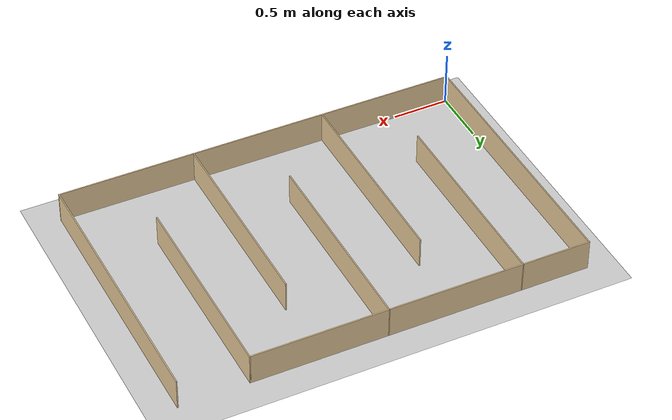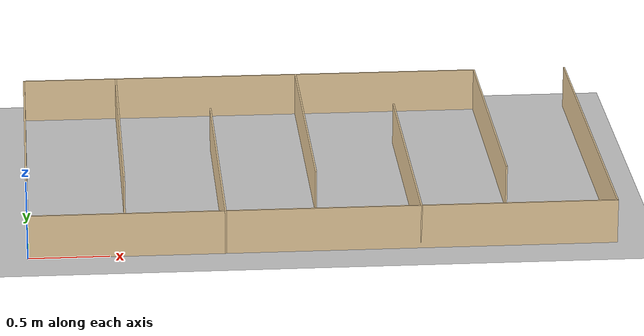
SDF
<sdf version="1.4">
 <world name="default">
  <scene><ambient>0.5 0.5 0.5 1.0</ambient><shadows>0</shadows></scene>
  <include><uri>model://ground_plane</uri></include>
  <include><uri>model://sun</uri></include>
  <model name="labyrinth_bronze">
   <pose>1.81 1.21 0 0 -0 0</pose>
   <link name="Wall_0">
    <collision name="Wall_0_Collision">
     <geometry><box><size>2.43 0.01 0.28</size></box></geometry>
     <pose>0 0 0.14 0 -0 0</pose>
    </collision>
    <visual name="Wall_0_Visual">
     <pose>0 0 0.14 0 -0 0</pose>
     <geometry><box><size>2.43 0.01 0.28</size></box></geometry>
     <material>
      <script><uri>file://media/materials/scripts/gazebo.material</uri><name>Gazebo/Grey</name></script>
      <ambient>0.921569 0.807843 0.615686 1</ambient>
     </material>
     <meta><layer>0</layer></meta>
    </visual>
    <pose>-1.81 0 0 0 -0 1.5708</pose>
   </link>
   <link name="Wall_10">
    <collision name="Wall_10_Collision">
     <geometry><box><size>1.81 0.01 0.28</size></box></geometry>
     <pose>0 0 0.14 0 -0 0</pose>
    </collision>
    <visual name="Wall_10_Visual">
     <pose>0 0 0.14 0 -0 0</pose>
     <geometry><box><size>1.81 0.01 0.28</size></box></geometry>
     <material>
      <script><uri>file://media/materials/scripts/gazebo.material</uri><name>Gazebo/Grey</name></script>
      <ambient>0.921569 0.807843 0.615686 1</ambient>
     </material>
     <meta><layer>0</layer></meta>
    </visual>
    <pose>0 0.31 0 0 0 -1.5708</pose>
   </link>
   <link name="Wall_12">
    <collision name="Wall_12_Collision">
     <geometry><box><size>1.81 0.01 0.28</size></box></geometry>
     <pose>0 0 0.14 0 -0 0</pose>
    </collision>
    <visual name="Wall_12_Visual">
     <pose>0 0 0.14 0 -0 0</pose>
     <geometry><box><size>1.81 0.01 0.28</size></box></geometry>
     <material>
      <script><uri>file://media/materials/scripts/gazebo.material</uri><name>Gazebo/Grey</name></script>
      <ambient>0.921569 0.807843 0.615686 1</ambient>
     </material>
     <meta><layer>0</layer></meta>
    </visual>
    <pose>-1.2 0.31 0 0 0 -1.5708</pose>
   </link>
   <link name="Wall_16">
    <collision name="Wall_16_Collision">
     <geometry><box><size>1.81 0.01 0.28</size></box></geometry>
     <pose>0 0 0.14 0 -0 0</pose>
    </collision>
    <visual name="Wall_16_Visual">
     <pose>0 0 0.14 0 -0 0</pose>
     <geometry><box><size>1.81 0.01 0.28</size></box></geometry>
     <material>
      <script><uri>file://media/materials/scripts/gazebo.material</uri><name>Gazebo/Grey</name></script>
      <ambient>0.921569 0.807843 0.615686 1</ambient>
     </material>
     <meta><layer>0</layer></meta>
    </visual>
    <pose>0.6 -0.31 0 0 -0 1.5708</pose>
   </link>
   <link name="Wall_18">
    <collision name="Wall_18_Collision">
     <geometry><box><size>3.63 0.01 0.28</size></box></geometry>
     <pose>0 0 0.14 0 -0 0</pose>
    </collision>
    <visual name="Wall_18_Visual">
     <pose>0 0 0.14 0 -0 0</pose>
     <geometry><box><size>3.63 0.01 0.28</size></box></geometry>
     <material>
      <script><uri>file://media/materials/scripts/gazebo.material</uri><name>Gazebo/Grey</name></script>
      <ambient>0.921569 0.807843 0.615686 1</ambient>
     </material>
     <meta><layer>0</layer></meta>
    </visual>
    <pose>0 -1.21 0 0 -0 3.14159</pose>
   </link>
   <link name="Wall_2">
    <collision name="Wall_2_Collision">
     <geometry><box><size>3.02 0.01 0.28</size></box></geometry>
     <pose>0 0 0.14 0 -0 0</pose>
    </collision>
    <visual name="Wall_2_Visual">
     <pose>0 0 0.14 0 -0 0</pose>
     <geometry><box><size>3.02 0.01 0.28</size></box></geometry>
     <material>
      <script><uri>file://media/materials/scripts/gazebo.material</uri><name>Gazebo/Grey</name></script>
      <ambient>0.921569 0.807843 0.615686 1</ambient>
     </material>
     <meta><layer>0</layer></meta>
    </visual>
    <pose>-0.305 1.21 0 0 -0 0</pose>
   </link>
   <link name="Wall_4">
    <collision name="Wall_4_Collision">
     <geometry><box><size>1.81 0.01 0.28</size></box></geometry>
     <pose>0 0 0.14 0 -0 0</pose>
    </collision>
    <visual name="Wall_4_Visual">
     <pose>0 0 0.14 0 -0 0</pose>
     <geometry><box><size>1.81 0.01 0.28</size></box></geometry>
     <material>
      <script><uri>file://media/materials/scripts/gazebo.material</uri><name>Gazebo/Grey</name></script>
      <ambient>0.921569 0.807843 0.615686 1</ambient>
     </material>
     <meta><layer>0</layer></meta>
    </visual>
    <pose>-0.6 -0.31 0 0 -0 1.5708</pose>
   </link>
   <link name="Wall_6">
    <collision name="Wall_6_Collision">
     <geometry><box><size>1.81 0.01 0.28</size></box></geometry>
     <pose>0 0 0.14 0 -0 0</pose>
    </collision>
    <visual name="Wall_6_Visual">
     <pose>0 0 0.14 0 -0 0</pose>
     <geometry><box><size>1.81 0.01 0.28</size></box></geometry>
     <material>
      <script><uri>file://media/materials/scripts/gazebo.material</uri><name>Gazebo/Grey</name></script>
      <ambient>0.921569 0.807843 0.615686 1</ambient>
     </material>
     <meta><layer>0</layer></meta>
    </visual>
    <pose>1.2 0.31 0 0 0 -1.5708</pose>
   </link>
   <link name="Wall_8">
    <collision name="Wall_8_Collision">
     <geometry><box><size>2.43 0.01 0.28</size></box></geometry>
     <pose>0 0 0.14 0 -0 0</pose>
    </collision>
    <visual name="Wall_8_Visual">
     <pose>0 0 0.14 0 -0 0</pose>
     <geometry><box><size>2.43 0.01 0.28</size></box></geometry>
     <material>
      <script><uri>file://media/materials/scripts/gazebo.material</uri><name>Gazebo/Grey</name></script>
      <ambient>0.921569 0.807843 0.615686 1</ambient>
     </material>
     <meta><layer>0</layer></meta>
    </visual>
    <pose>1.81 0 0 0 0 -1.5708</pose>
   </link>
   <static>1</static>
  </model>
 </world>
</sdf>
